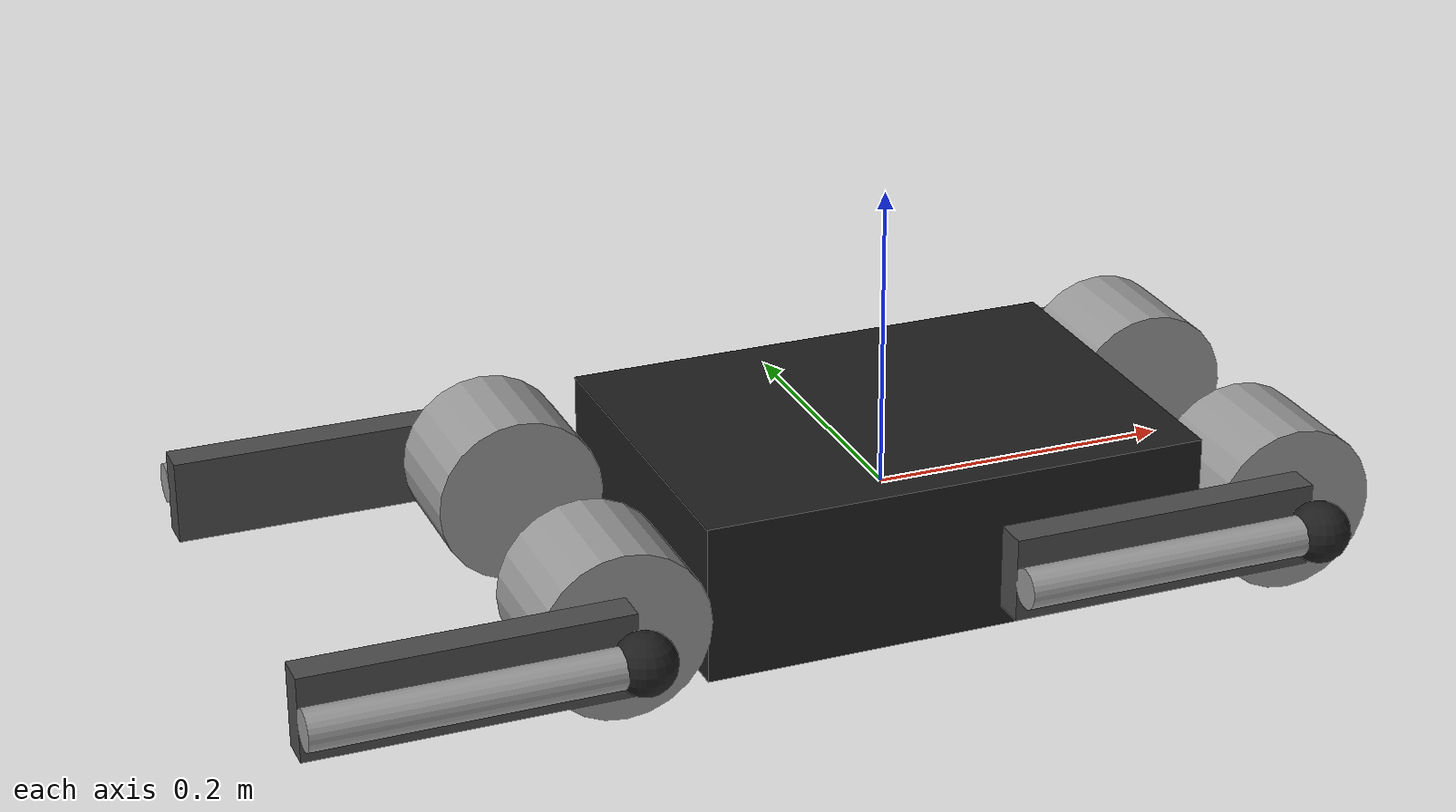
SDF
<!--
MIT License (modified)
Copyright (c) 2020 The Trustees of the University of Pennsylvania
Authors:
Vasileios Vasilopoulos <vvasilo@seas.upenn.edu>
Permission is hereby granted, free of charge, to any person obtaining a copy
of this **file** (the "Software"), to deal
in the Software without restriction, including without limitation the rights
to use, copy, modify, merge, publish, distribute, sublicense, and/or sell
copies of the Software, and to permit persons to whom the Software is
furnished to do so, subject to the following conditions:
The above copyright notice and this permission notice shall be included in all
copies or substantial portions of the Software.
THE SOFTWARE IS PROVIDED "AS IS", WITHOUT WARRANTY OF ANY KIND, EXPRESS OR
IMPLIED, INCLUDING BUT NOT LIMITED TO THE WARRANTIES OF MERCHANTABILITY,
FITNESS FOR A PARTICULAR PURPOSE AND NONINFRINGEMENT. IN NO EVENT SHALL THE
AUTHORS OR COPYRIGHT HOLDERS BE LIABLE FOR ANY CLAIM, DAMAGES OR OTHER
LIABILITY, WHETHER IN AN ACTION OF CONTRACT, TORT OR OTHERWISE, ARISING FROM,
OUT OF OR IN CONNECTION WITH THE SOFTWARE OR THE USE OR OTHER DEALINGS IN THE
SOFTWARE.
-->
<?xml version='1.0'?>

<sdf version='1.6'>
  <model name='spirit'>
    <link name='body'>
      <pose frame=''>0 0 0 0 -0 0</pose>
      <inertial>
        <pose frame=''>0 0 0 0 -0 0</pose>
        <mass>5.75</mass>
        <inertia>
          <ixx>0.05</ixx>
          <ixy>0</ixy>
          <ixz>0</ixz>
          <iyy>0.1</iyy>
          <iyz>0</iyz>
          <izz>0.1</izz>
        </inertia>
      </inertial>
      <collision name='body_collision'>
        <pose frame=''>0 0 0 0 -0 0</pose>
        <geometry>
          <box>
            <size>0.335 0.24 0.104</size>
          </box>
        </geometry>
        <surface>
          <contact>
            <ode/>
          </contact>
          <friction>
            <ode/>
          </friction>
        </surface>
      </collision>
      <visual name='body_visual'>
        <pose frame=''>0 0 0 0 -0 0</pose>
        <geometry>
          <box>
            <size>0.335 0.24 0.104</size>
          </box>
        </geometry>
        <material>
          <script>
            <name>Gazebo/Black</name>
            <uri>file://media/materials/scripts/gazebo.material</uri>
          </script>
        </material>
      </visual>
      <gravity>1</gravity>
      <velocity_decay/>
    </link>

    <link name='hip2'>
      <pose frame=''>0.2263 -0.07 0 0 -0 0</pose>
      <inertial>
        <pose frame=''>0 0 0 0 -0 0</pose>
        <mass>0.575</mass>
        <inertia>
          <ixx>0.000669635</ixx>
          <ixy>0</ixy>
          <ixz>0</ixz>
          <iyy>0.000669635</iyy>
          <iyz>0</iyz>
          <izz>0.000869688</izz>
        </inertia>
      </inertial>
      <collision name='hip2_collision'>
        <pose frame=''>0 -0.028 0 1.5708 -0 0</pose>
        <geometry>
          <cylinder>
            <length>0.08</length>
            <radius>0.055</radius>
          </cylinder>
        </geometry>
        <surface>
          <contact>
            <ode/>
          </contact>
          <friction>
            <ode/>
          </friction>
        </surface>
      </collision>
      <visual name='hip2_visual'>
        <pose frame=''>0 -0.028 0 1.5708 -0 0</pose>
        <geometry>
          <cylinder>
            <length>0.08</length>
            <radius>0.055</radius>
          </cylinder>
        </geometry>
        <material>
          <script>
            <name>Gazebo/Grey</name>
            <uri>file://media/materials/scripts/gazebo.material</uri>
          </script>
        </material>
      </visual>
      <gravity>1</gravity>
      <velocity_decay/>
    </link>
    <joint name='10' type='revolute'>
      <child>hip2</child>
      <parent>body</parent>
      <axis>
        <xyz>1 0 0</xyz>
        <limit>
          <lower>-0.707</lower>
          <upper>0.707</upper>
          <effort>40</effort>
          <velocity>30</velocity>
        </limit>
        <dynamics>
          <damping>0</damping>
          <friction>0</friction>
          <spring_reference>0</spring_reference>
          <spring_stiffness>0</spring_stiffness>
        </dynamics>
        <use_parent_model_frame>1</use_parent_model_frame>
      </axis>
    </joint>
    <link name='upper2'>
      <pose frame=''>0.2263 -0.17098 0 0 -0 0</pose>
      <inertial>
        <pose frame=''>0 0 0 0 -0 0</pose>
        <mass>0.775</mass>
        <inertia>
          <ixx>5e-05</ixx>
          <ixy>0</ixy>
          <ixz>0</ixz>
          <iyy>0.001</iyy>
          <iyz>0</iyz>
          <izz>0.001</izz>
        </inertia>
      </inertial>
      <collision name='upper2_collision'>
        <pose frame=''>-0.103 0.022 0 0 -0 0</pose>
        <geometry>
          <box>
            <size>0.206 0.022 0.055</size>
          </box>
        </geometry>
        <surface>
          <contact>
            <ode/>
          </contact>
          <friction>
            <ode/>
          </friction>
        </surface>
      </collision>
      <visual name='upper2_visual'>
        <pose frame=''>-0.103 0.022 0 0 -0 0</pose>
        <geometry>
          <box>
            <size>0.206 0.022 0.055</size>
          </box>
        </geometry>
        <material>
          <script>
            <name>Gazebo/DarkGrey</name>
            <uri>file://media/materials/scripts/gazebo.material</uri>
          </script>
        </material>
      </visual>
      <gravity>1</gravity>
      <velocity_decay/>
    </link>
    <joint name='4' type='revolute'>
      <child>upper2</child>
      <parent>hip2</parent>
      <axis>
        <xyz>0 -1 0</xyz>
        <limit>
          <lower>-6.28319</lower>
          <upper>6.28319</upper>
          <effort>40</effort>
          <velocity>30</velocity>
        </limit>
        <dynamics>
          <damping>0</damping>
          <friction>0</friction>
          <spring_reference>0</spring_reference>
          <spring_stiffness>0</spring_stiffness>
        </dynamics>
        <use_parent_model_frame>1</use_parent_model_frame>
      </axis>
    </joint>
    <link name='lower2'>
      <pose frame=''>0.0203 -0.17098 0 0 -0 0</pose>
      <inertial>
        <pose frame=''>0.034333 0 0 0 -0 0</pose>
        <mass>0.09</mass>
        <inertia>
          <ixx>3e-05</ixx>
          <ixy>0</ixy>
          <ixz>0</ixz>
          <iyy>0.00065545</iyy>
          <iyz>0</iyz>
          <izz>0.00065545</izz>
        </inertia>
      </inertial>
      <collision name='lower2_collision'>
        <pose frame=''>0.103 0 0 3.14159 1.57079 3.14159</pose>
        <geometry>
          <cylinder>
            <length>0.206</length>
            <radius>0.013</radius>
          </cylinder>
        </geometry>
        <surface>
          <contact>
            <ode/>
          </contact>
          <friction>
            <ode/>
          </friction>
        </surface>
      </collision>
      <collision name='toe2_collision'>
        <pose frame=''>0.206 0 0 0 -0 0</pose>
        <geometry>
          <sphere>
            <radius>0.02</radius>
          </sphere>
        </geometry>
        <surface>
          <bounce>
            <restitution_coefficient>0</restitution_coefficient>
            <threshold>1e+06</threshold>
          </bounce>
          <friction>
            <torsional>
              <coefficient>0.3</coefficient>
            </torsional>
            <ode>
              <mu>100</mu>
              <mu2>50</mu2>
            </ode>
            <bullet>
              <rolling_friction>0.3</rolling_friction>
              <friction2>50</friction2>
            </bullet>
          </friction>
          <contact>
            <bullet>
              <kp>30000</kp>
              <kd>1000</kd>
              <split_impulse>1</split_impulse>
              <split_impulse_penetration_threshold>-0.01</split_impulse_penetration_threshold>
            </bullet>
            <ode>
              <kp>30000</kp>
              <kd>1000</kd>
            </ode>
          </contact>
        </surface>
      </collision>
      <sensor name="toe2_contact" type="contact">
        <plugin name="toe2_plugin" filename="libcontact.so"/>
        <contact>
          <collision>toe2_collision</collision>
        </contact>
      </sensor>
      <visual name='lower2_visual'>
        <pose frame=''>0.103 0 0 3.14159 1.57079 3.14159</pose>
        <geometry>
          <cylinder>
            <length>0.206</length>
            <radius>0.013</radius>
          </cylinder>
        </geometry>
        <material>
          <script>
            <name>Gazebo/Grey</name>
            <uri>file://media/materials/scripts/gazebo.material</uri>
          </script>
        </material>
      </visual>
      <visual name='lower2_fixed_joint_lump__toe2_visual_1'>
        <pose frame=''>0.206 0 0 0 -0 0</pose>
        <geometry>
          <sphere>
            <radius>0.02</radius>
          </sphere>
        </geometry>
        <material>
          <script>
            <name>Gazebo/Black</name>
            <uri>file://media/materials/scripts/gazebo.material</uri>
          </script>
        </material>
      </visual>
      <velocity_decay/>
      <gravity>1</gravity>
      <velocity_decay/>
    </link>
    <joint name='5' type='revolute'>
      <child>lower2</child>
      <parent>upper2</parent>
      <axis>
        <xyz>0 1 0</xyz>
        <limit>
          <lower>0</lower>
          <upper>3.14159</upper>
          <effort>40</effort>
          <velocity>30</velocity>
        </limit>
        <dynamics>
          <damping>0</damping>
          <friction>0</friction>
          <spring_reference>0</spring_reference>
          <spring_stiffness>0</spring_stiffness>
        </dynamics>
        <use_parent_model_frame>1</use_parent_model_frame>
      </axis>
    </joint>
    <link name='hip3'>
      <pose frame=''>-0.2263 -0.07 0 0 -0 0</pose>
      <inertial>
        <pose frame=''>0 0 0 0 -0 0</pose>
        <mass>0.575</mass>
        <inertia>
          <ixx>0.000669635</ixx>
          <ixy>0</ixy>
          <ixz>0</ixz>
          <iyy>0.000669635</iyy>
          <iyz>0</iyz>
          <izz>0.000869688</izz>
        </inertia>
      </inertial>
      <collision name='hip3_collision'>
        <pose frame=''>0 -0.028 0 1.5708 -0 0</pose>
        <geometry>
          <cylinder>
            <length>0.08</length>
            <radius>0.055</radius>
          </cylinder>
        </geometry>
        <surface>
          <contact>
            <ode/>
          </contact>
          <friction>
            <ode/>
          </friction>
        </surface>
      </collision>
      <visual name='hip3_visual'>
        <pose frame=''>-0 -0.028 0 1.5708 -0 0</pose>
        <geometry>
          <cylinder>
            <length>0.08</length>
            <radius>0.055</radius>
          </cylinder>
        </geometry>
        <material>
          <script>
            <name>Gazebo/Grey</name>
            <uri>file://media/materials/scripts/gazebo.material</uri>
          </script>
        </material>
      </visual>
      <gravity>1</gravity>
      <velocity_decay/>
    </link>
    <joint name='11' type='revolute'>
      <child>hip3</child>
      <parent>body</parent>
      <axis>
        <xyz>1 0 0</xyz>
        <limit>
          <lower>-0.707</lower>
          <upper>0.707</upper>
          <effort>40</effort>
          <velocity>30</velocity>
        </limit>
        <dynamics>
          <damping>0</damping>
          <friction>0</friction>
          <spring_reference>0</spring_reference>
          <spring_stiffness>0</spring_stiffness>
        </dynamics>
        <use_parent_model_frame>1</use_parent_model_frame>
      </axis>
    </joint>
    <link name='upper3'>
      <pose frame=''>-0.2263 -0.17098 0 0 -0 0</pose>
      <inertial>
        <pose frame=''>0 0 0 0 -0 0</pose>
        <mass>0.775</mass>
        <inertia>
          <ixx>5e-05</ixx>
          <ixy>0</ixy>
          <ixz>0</ixz>
          <iyy>0.001</iyy>
          <iyz>0</iyz>
          <izz>0.001</izz>
        </inertia>
      </inertial>
      <collision name='upper3_collision'>
        <pose frame=''>-0.103 0.022 0 0 -0 0</pose>
        <geometry>
          <box>
            <size>0.206 0.022 0.055</size>
          </box>
        </geometry>
        <surface>
          <contact>
            <ode/>
          </contact>
          <friction>
            <ode/>
          </friction>
        </surface>
      </collision>
      <visual name='upper3_visual'>
        <pose frame=''>-0.103 0.022 0 0 -0 0</pose>
        <geometry>
          <box>
            <size>0.206 0.022 0.055</size>
          </box>
        </geometry>
        <material>
          <script>
            <name>Gazebo/DarkGrey</name>
            <uri>file://media/materials/scripts/gazebo.material</uri>
          </script>
        </material>
      </visual>
      <gravity>1</gravity>
      <velocity_decay/>
    </link>
    <joint name='6' type='revolute'>
      <child>upper3</child>
      <parent>hip3</parent>
      <axis>
        <xyz>0 -1 0</xyz>
        <limit>
          <lower>-6.28319</lower>
          <upper>6.28319</upper>
          <effort>40</effort>
          <velocity>30</velocity>
        </limit>
        <dynamics>
          <damping>0</damping>
          <friction>0</friction>
          <spring_reference>0</spring_reference>
          <spring_stiffness>0</spring_stiffness>
        </dynamics>
        <use_parent_model_frame>1</use_parent_model_frame>
      </axis>
    </joint>
    <link name='lower3'>
      <pose frame=''>-0.4323 -0.17098 0 0 -0 0</pose>
      <inertial>
        <pose frame=''>0.034333 0 0 0 -0 0</pose>
        <mass>0.09</mass>
        <inertia>
          <ixx>3e-05</ixx>
          <ixy>0</ixy>
          <ixz>0</ixz>
          <iyy>0.00065545</iyy>
          <iyz>0</iyz>
          <izz>0.00065545</izz>
        </inertia>
      </inertial>
      <collision name='lower3_collision'>
        <pose frame=''>0.103 0 0 3.14159 1.57079 3.14159</pose>
        <geometry>
          <cylinder>
            <length>0.206</length>
            <radius>0.013</radius>
          </cylinder>
        </geometry>
        <surface>
          <contact>
            <ode/>
          </contact>
          <friction>
            <ode/>
          </friction>
        </surface>
      </collision>
      <collision name='toe3_collision'>
        <pose frame=''>0.206 0 0 0 -0 0</pose>
        <geometry>
          <sphere>
            <radius>0.02</radius>
          </sphere>
        </geometry>
        <surface>
          <bounce>
            <restitution_coefficient>0</restitution_coefficient>
            <threshold>1e+06</threshold>
          </bounce>
          <friction>
            <torsional>
              <coefficient>0.3</coefficient>
            </torsional>
            <ode>
              <mu>100</mu>
              <mu2>50</mu2>
            </ode>
            <bullet>
              <rolling_friction>0.3</rolling_friction>
              <friction2>50</friction2>
            </bullet>
          </friction>
          <contact>
            <bullet>
              <kp>30000</kp>
              <kd>1000</kd>
              <split_impulse>1</split_impulse>
              <split_impulse_penetration_threshold>-0.01</split_impulse_penetration_threshold>
            </bullet>
            <ode>
              <kp>30000</kp>
              <kd>1000</kd>
            </ode>
          </contact>
        </surface>
      </collision>
      <sensor name="toe3_contact" type="contact">
        <plugin name="toe3_plugin" filename="libcontact.so"/>
        <contact>
          <collision>toe3_collision</collision>
        </contact>
      </sensor>
      <visual name='lower3_visual'>
        <pose frame=''>0.103 0 0 3.14159 1.57079 3.14159</pose>
        <geometry>
          <cylinder>
            <length>0.206</length>
            <radius>0.013</radius>
          </cylinder>
        </geometry>
        <material>
          <script>
            <name>Gazebo/Grey</name>
            <uri>file://media/materials/scripts/gazebo.material</uri>
          </script>
        </material>
      </visual>
      <visual name='lower3_fixed_joint_lump__toe3_visual_1'>
        <pose frame=''>0.206 0 0 0 -0 0</pose>
        <geometry>
          <sphere>
            <radius>0.02</radius>
          </sphere>
        </geometry>
        <material>
          <script>
            <name>Gazebo/Black</name>
            <uri>file://media/materials/scripts/gazebo.material</uri>
          </script>
        </material>
      </visual>
      <velocity_decay/>
      <gravity>1</gravity>
      <velocity_decay/>
    </link>
    <joint name='7' type='revolute'>
      <child>lower3</child>
      <parent>upper3</parent>
      <axis>
        <xyz>0 1 0</xyz>
        <limit>
          <lower>0</lower>
          <upper>3.14159</upper>
          <effort>40</effort>
          <velocity>30</velocity>
        </limit>
        <dynamics>
          <damping>0</damping>
          <friction>0</friction>
          <spring_reference>0</spring_reference>
          <spring_stiffness>0</spring_stiffness>
        </dynamics>
        <use_parent_model_frame>1</use_parent_model_frame>
      </axis>
    </joint>
    <link name='hip0'>
      <pose frame=''>0.2263 0.07 0 0 -0 0</pose>
      <inertial>
        <pose frame=''>0 0 0 0 -0 0</pose>
        <mass>0.575</mass>
        <inertia>
          <ixx>0.000669635</ixx>
          <ixy>0</ixy>
          <ixz>0</ixz>
          <iyy>0.000669635</iyy>
          <iyz>0</iyz>
          <izz>0.000869688</izz>
        </inertia>
      </inertial>
      <collision name='hip0_collision'>
        <pose frame=''>0 0.028 0 1.5708 -0 0</pose>
        <geometry>
          <cylinder>
            <length>0.08</length>
            <radius>0.055</radius>
          </cylinder>
        </geometry>
        <surface>
          <contact>
            <ode/>
          </contact>
          <friction>
            <ode/>
          </friction>
        </surface>
      </collision>
      <visual name='hip0_visual'>
        <pose frame=''>0 0.028 0 1.5708 -0 0</pose>
        <geometry>
          <cylinder>
            <length>0.08</length>
            <radius>0.055</radius>
          </cylinder>
        </geometry>
        <material>
          <script>
            <name>Gazebo/Grey</name>
            <uri>file://media/materials/scripts/gazebo.material</uri>
          </script>
        </material>
      </visual>
      <gravity>1</gravity>
      <velocity_decay/>
    </link>
    <joint name='8' type='revolute'>
      <child>hip0</child>
      <parent>body</parent>
      <axis>
        <xyz>1 0 0</xyz>
        <limit>
          <lower>-0.707</lower>
          <upper>0.707</upper>
          <effort>40</effort>
          <velocity>30</velocity>
        </limit>
        <dynamics>
          <damping>0</damping>
          <friction>0</friction>
          <spring_reference>0</spring_reference>
          <spring_stiffness>0</spring_stiffness>
        </dynamics>
        <use_parent_model_frame>1</use_parent_model_frame>
      </axis>
    </joint>
    <link name='upper0'>
      <pose frame=''>0.2263 0.17098 0 0 -0 0</pose>
      <inertial>
        <pose frame=''>0 0 0 0 -0 0</pose>
        <mass>0.775</mass>
        <inertia>
          <ixx>5e-05</ixx>
          <ixy>0</ixy>
          <ixz>0</ixz>
          <iyy>0.001</iyy>
          <iyz>0</iyz>
          <izz>0.001</izz>
        </inertia>
      </inertial>
      <collision name='upper0_collision'>
        <pose frame=''>-0.103 -0.022 0 0 -0 0</pose>
        <geometry>
          <box>
            <size>0.206 0.022 0.055</size>
          </box>
        </geometry>
        <surface>
          <contact>
            <ode/>
          </contact>
          <friction>
            <ode/>
          </friction>
        </surface>
      </collision>
      <visual name='upper0_visual'>
        <pose frame=''>-0.103 -0.022 0 0 -0 0</pose>
        <geometry>
          <box>
            <size>0.206 0.022 0.055</size>
          </box>
        </geometry>
        <material>
          <script>
            <name>Gazebo/DarkGrey</name>
            <uri>file://media/materials/scripts/gazebo.material</uri>
          </script>
        </material>
      </visual>
      <gravity>1</gravity>
      <velocity_decay/>
    </link>
    <joint name='0' type='revolute'>
      <child>upper0</child>
      <parent>hip0</parent>
      <axis>
        <xyz>0 -1 0</xyz>
        <limit>
          <lower>-6.28319</lower>
          <upper>6.28319</upper>
          <effort>40</effort>
          <velocity>30</velocity>
        </limit>
        <dynamics>
          <damping>0</damping>
          <friction>0</friction>
          <spring_reference>0</spring_reference>
          <spring_stiffness>0</spring_stiffness>
        </dynamics>
        <use_parent_model_frame>1</use_parent_model_frame>
      </axis>
    </joint>
    <link name='lower0'>
      <pose frame=''>0.0203 0.17098 0 0 -0 0</pose>
      <inertial>
        <pose frame=''>0.034333 0 0 0 -0 0</pose>
        <mass>0.09</mass>
        <inertia>
          <ixx>3e-05</ixx>
          <ixy>0</ixy>
          <ixz>0</ixz>
          <iyy>0.00065545</iyy>
          <iyz>0</iyz>
          <izz>0.00065545</izz>
        </inertia>
      </inertial>
      <collision name='lower0_collision'>
        <pose frame=''>0.103 0 0 3.14159 1.57079 3.14159</pose>
        <geometry>
          <cylinder>
            <length>0.206</length>
            <radius>0.013</radius>
          </cylinder>
        </geometry>
        <surface>
          <contact>
            <ode/>
          </contact>
          <friction>
            <ode/>
          </friction>
        </surface>
      </collision>
      <collision name='toe0_collision'>
        <pose frame=''>0.206 0 0 0 -0 0</pose>
        <geometry>
          <sphere>
            <radius>0.02</radius>
          </sphere>
        </geometry>
        <surface>
          <bounce>
            <restitution_coefficient>0</restitution_coefficient>
            <threshold>1e+06</threshold>
          </bounce>
          <friction>
            <torsional>
              <coefficient>0.3</coefficient>
            </torsional>
            <ode>
              <mu>100</mu>
              <mu2>50</mu2>
            </ode>
            <bullet>
              <rolling_friction>0.3</rolling_friction>
              <friction2>50</friction2>
            </bullet>
          </friction>
          <contact>
            <bullet>
              <kp>30000</kp>
              <kd>1000</kd>
              <split_impulse>1</split_impulse>
              <split_impulse_penetration_threshold>-0.01</split_impulse_penetration_threshold>
            </bullet>
            <ode>
              <kp>30000</kp>
              <kd>1000</kd>
            </ode>
          </contact>
        </surface>
      </collision>
      <sensor name="toe0_contact" type="contact">
        <plugin name="toe0_plugin" filename="libcontact.so"/>
        <contact>
          <collision>toe0_collision</collision>
        </contact>
      </sensor>
      <visual name='lower0_visual'>
        <pose frame=''>0.103 0 0 3.14159 1.57079 3.14159</pose>
        <geometry>
          <cylinder>
            <length>0.206</length>
            <radius>0.013</radius>
          </cylinder>
        </geometry>
        <material>
          <script>
            <name>Gazebo/Grey</name>
            <uri>file://media/materials/scripts/gazebo.material</uri>
          </script>
        </material>
      </visual>
      <visual name='lower0_fixed_joint_lump__toe0_visual_1'>
        <pose frame=''>0.206 0 0 0 -0 0</pose>
        <geometry>
          <sphere>
            <radius>0.02</radius>
          </sphere>
        </geometry>
        <material>
          <script>
            <name>Gazebo/Black</name>
            <uri>file://media/materials/scripts/gazebo.material</uri>
          </script>
        </material>
      </visual>
      <velocity_decay/>
      <gravity>1</gravity>
      <velocity_decay/>
    </link>
    <joint name='1' type='revolute'>
      <child>lower0</child>
      <parent>upper0</parent>
      <axis>
        <xyz>0 1 0</xyz>
        <limit>
          <lower>0</lower>
          <upper>3.14159</upper>
          <effort>40</effort>
          <velocity>30</velocity>
        </limit>
        <dynamics>
          <damping>0</damping>
          <friction>0</friction>
          <spring_reference>0</spring_reference>
          <spring_stiffness>0</spring_stiffness>
        </dynamics>
        <use_parent_model_frame>1</use_parent_model_frame>
      </axis>
    </joint>
    <link name='hip1'>
      <pose frame=''>-0.2263 0.07 0 0 -0 0</pose>
      <inertial>
        <pose frame=''>0 0 0 0 -0 0</pose>
        <mass>0.575</mass>
        <inertia>
          <ixx>0.000669635</ixx>
          <ixy>0</ixy>
          <ixz>0</ixz>
          <iyy>0.000669635</iyy>
          <iyz>0</iyz>
          <izz>0.000869688</izz>
        </inertia>
      </inertial>
      <collision name='hip1_collision'>
        <pose frame=''>0 0.028 0 1.5708 -0 0</pose>
        <geometry>
          <cylinder>
            <length>0.08</length>
            <radius>0.055</radius>
          </cylinder>
        </geometry>
        <surface>
          <contact>
            <ode/>
          </contact>
          <friction>
            <ode/>
          </friction>
        </surface>
      </collision>
      <visual name='hip1_visual'>
        <pose frame=''>-0 0.028 0 1.5708 -0 0</pose>
        <geometry>
          <cylinder>
            <length>0.08</length>
            <radius>0.055</radius>
          </cylinder>
        </geometry>
        <material>
          <script>
            <name>Gazebo/Grey</name>
            <uri>file://media/materials/scripts/gazebo.material</uri>
          </script>
        </material>
      </visual>
      <gravity>1</gravity>
      <velocity_decay/>
    </link>
    <joint name='9' type='revolute'>
      <child>hip1</child>
      <parent>body</parent>
      <axis>
        <xyz>1 0 0</xyz>
        <limit>
          <lower>-0.707</lower>
          <upper>0.707</upper>
          <effort>40</effort>
          <velocity>30</velocity>
        </limit>
        <dynamics>
          <damping>0</damping>
          <friction>0</friction>
          <spring_reference>0</spring_reference>
          <spring_stiffness>0</spring_stiffness>
        </dynamics>
        <use_parent_model_frame>1</use_parent_model_frame>
      </axis>
    </joint>
    <link name='upper1'>
      <pose frame=''>-0.2263 0.17098 0 0 -0 0</pose>
      <inertial>
        <pose frame=''>0 0 0 0 -0 0</pose>
        <mass>0.775</mass>
        <inertia>
          <ixx>5e-05</ixx>
          <ixy>0</ixy>
          <ixz>0</ixz>
          <iyy>0.001</iyy>
          <iyz>0</iyz>
          <izz>0.001</izz>
        </inertia>
      </inertial>
      <collision name='upper1_collision'>
        <pose frame=''>-0.103 -0.022 0 0 -0 0</pose>
        <geometry>
          <box>
            <size>0.206 0.022 0.055</size>
          </box>
        </geometry>
        <surface>
          <contact>
            <ode/>
          </contact>
          <friction>
            <ode/>
          </friction>
        </surface>
      </collision>
      <visual name='upper1_visual'>
        <pose frame=''>-0.103 -0.022 0 0 -0 0</pose>
        <geometry>
          <box>
            <size>0.206 0.022 0.055</size>
          </box>
        </geometry>
        <material>
          <script>
            <name>Gazebo/DarkGrey</name>
            <uri>file://media/materials/scripts/gazebo.material</uri>
          </script>
        </material>
      </visual>
      <gravity>1</gravity>
      <velocity_decay/>
    </link>
    <joint name='2' type='revolute'>
      <child>upper1</child>
      <parent>hip1</parent>
      <axis>
        <xyz>0 -1 0</xyz>
        <limit>
          <lower>-6.28319</lower>
          <upper>6.28319</upper>
          <effort>40</effort>
          <velocity>30</velocity>
        </limit>
        <dynamics>
          <damping>0</damping>
          <friction>0</friction>
          <spring_reference>0</spring_reference>
          <spring_stiffness>0</spring_stiffness>
        </dynamics>
        <use_parent_model_frame>1</use_parent_model_frame>
      </axis>
    </joint>
    <link name='lower1'>
      <pose frame=''>-0.4323 0.17098 0 0 -0 0</pose>
      <inertial>
        <pose frame=''>0.034333 0 0 0 -0 0</pose>
        <mass>0.09</mass>
        <inertia>
          <ixx>3e-05</ixx>
          <ixy>0</ixy>
          <ixz>0</ixz>
          <iyy>0.00065545</iyy>
          <iyz>0</iyz>
          <izz>0.00065545</izz>
        </inertia>
      </inertial>
      <collision name='lower1_collision'>
        <pose frame=''>0.103 0 0 3.14159 1.57079 3.14159</pose>
        <geometry>
          <cylinder>
            <length>0.206</length>
            <radius>0.013</radius>
          </cylinder>
        </geometry>
        <surface>
          <contact>
            <ode/>
          </contact>
          <friction>
            <ode/>
          </friction>
        </surface>
      </collision>
      <collision name='toe1_collision'>
        <pose frame=''>0.206 0 0 0 -0 0</pose>
        <geometry>
          <sphere>
            <radius>0.02</radius>
          </sphere>
        </geometry>
        <surface>
          <bounce>
            <restitution_coefficient>0</restitution_coefficient>
            <threshold>1e+06</threshold>
          </bounce>
          <friction>
            <torsional>
              <coefficient>0.3</coefficient>
            </torsional>
            <ode>
              <mu>100</mu>
              <mu2>50</mu2>
            </ode>
            <bullet>
              <rolling_friction>0.3</rolling_friction>
              <friction2>50</friction2>
            </bullet>
          </friction>
          <contact>
            <bullet>
              <kp>30000</kp>
              <kd>1000</kd>
              <split_impulse>1</split_impulse>
              <split_impulse_penetration_threshold>-0.01</split_impulse_penetration_threshold>
            </bullet>
            <ode>
              <kp>30000</kp>
              <kd>1000</kd>
            </ode>
          </contact>
        </surface>
      </collision>
      <sensor name="toe1_contact" type="contact">
        <plugin name="toe1_plugin" filename="libcontact.so"/>
        <contact>
          <collision>toe1_collision</collision>
        </contact>
      </sensor>
      <visual name='lower1_visual'>
        <pose frame=''>0.103 0 0 3.14159 1.57079 3.14159</pose>
        <geometry>
          <cylinder>
            <length>0.206</length>
            <radius>0.013</radius>
          </cylinder>
        </geometry>
        <material>
          <script>
            <name>Gazebo/Grey</name>
            <uri>file://media/materials/scripts/gazebo.material</uri>
          </script>
        </material>
      </visual>
      <visual name='lower1_fixed_joint_lump__toe1_visual_1'>
        <pose frame=''>0.206 0 0 0 -0 0</pose>
        <geometry>
          <sphere>
            <radius>0.02</radius>
          </sphere>
        </geometry>
        <material>
          <script>
            <name>Gazebo/Black</name>
            <uri>file://media/materials/scripts/gazebo.material</uri>
          </script>
        </material>
      </visual>
      <velocity_decay/>
      <gravity>1</gravity>
      <velocity_decay/>
    </link>
    <joint name='3' type='revolute'>
      <child>lower1</child>
      <parent>upper1</parent>
      <axis>
        <xyz>0 1 0</xyz>
        <limit>
          <lower>0</lower>
          <upper>3.14159</upper>
          <effort>40</effort>
          <velocity>30</velocity>
        </limit>
        <dynamics>
          <damping>0</damping>
          <friction>0</friction>
          <spring_reference>0</spring_reference>
          <spring_stiffness>0</spring_stiffness>
        </dynamics>
        <use_parent_model_frame>1</use_parent_model_frame>
      </axis>
    </joint>
    <static>0</static>
    <!-- Publish imu sensor readings -->
    <include>
      <uri>model://imu</uri>
      <pose>0 0 0 0 0 0 </pose>
    </include>
    <joint name="imu_joint" type="fixed">
      <child>imu::link</child>
      <parent>body</parent>
    </joint>
    <!-- Setup ros control -->
    <plugin name='gazebo_ros_control' filename='libgazebo_ros_control.so'>
      <robotNamespace>/spirit</robotNamespace>
    </plugin>
    <!-- Publish ground truth state data -->
    <plugin filename="libground_truth_estimator.so" name="ground_truth_estimator">
      <updateRateHZ>100.0</updateRateHZ>
    </plugin>
  </model>
</sdf>

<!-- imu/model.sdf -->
<sdf version="1.6">
  <model name="imu">
    <link name="link">
      <visual name="visual">
        <geometry>
          <box>
            <size>0.05 0.05 0.02</size>
          </box>
        </geometry>
      </visual>
      <inertial>
        <mass>0.001</mass>
        <inertia>
          <ixx>0.00000000</ixx>
          <ixy>0.00000000</ixy>
          <ixz>0.00000000</ixz>
          <iyy>0.00000000</iyy>
          <iyz>0.00000000</iyz>
          <izz>0.00000000</izz>
        </inertia>
      </inertial>
      <sensor name="imu_sensor" type="imu">
        <always_on>true</always_on>
        <update_rate>100</update_rate>
        <visualize>true</visualize>
        <topic>__default_topic__</topic>
        <plugin filename="libgazebo_ros_imu_sensor.so" name="imu_plugin">
          <topicName>imu</topicName>
          <bodyName>link</bodyName>
          <robotNamespace>/spirit</robotNamespace>
          <updateRateHZ>100.0</updateRateHZ>
          <gaussianNoise>0.0</gaussianNoise>
          <xyzOffset>0 0 0</xyzOffset>
          <rpyOffset>0 0 0</rpyOffset>
          <frameName>link</frameName>
          <initialOrientationAsReference>false</initialOrientationAsReference>
        </plugin>
        <pose>0 0 0 0 0 0</pose>
      </sensor>
    </link>
  </model>
</sdf>
